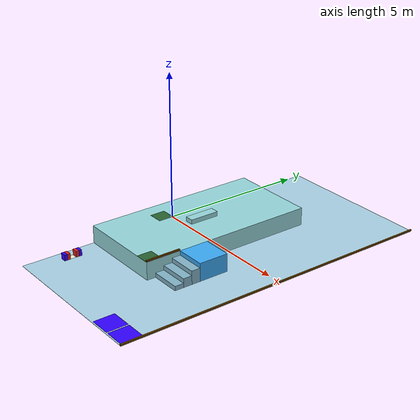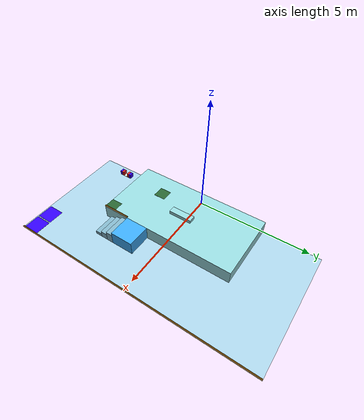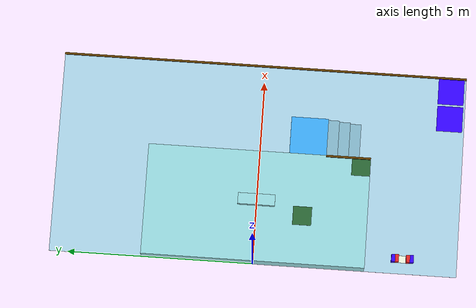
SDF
<sdf version="1.9">
 <world name="robocon_2027">
  <model name="robocon_2027_field">
   <static>true</static>
   <link name="ground_blue">
    <pose>2.750000 0.000000 0.001000 0.000000 0.000000 0.000000</pose>
    <visual name="visual">
     <geometry><box><size>5.500000 11.000000 0.002000</size></box></geometry>
     <cast_shadows>false</cast_shadows>
     <material>
      <ambient>0.666667 0.823529 0.901961 1</ambient>
      <diffuse>0.666667 0.823529 0.901961 1</diffuse>
      <specular>0.08 0.08 0.08 1</specular>
      <double_sided>true</double_sided>
     </material>
    </visual>
   </link>
   <link name="start_blue_outer">
    <pose>5.100000 -5.100000 0.003000 0.000000 0.000000 0.000000</pose>
    <visual name="visual">
     <geometry><box><size>0.700000 0.700000 0.002000</size></box></geometry>
     <cast_shadows>false</cast_shadows>
     <material>
      <ambient>0.196078 0.000000 1.000000 1</ambient>
      <diffuse>0.196078 0.000000 1.000000 1</diffuse>
      <specular>0.08 0.08 0.08 1</specular>
      <double_sided>true</double_sided>
     </material>
    </visual>
   </link>
   <link name="start_blue_inner">
    <pose>4.350000 -5.100000 0.003000 0.000000 0.000000 0.000000</pose>
    <visual name="visual">
     <geometry><box><size>0.700000 0.700000 0.002000</size></box></geometry>
     <cast_shadows>false</cast_shadows>
     <material>
      <ambient>0.196078 0.000000 1.000000 1</ambient>
      <diffuse>0.196078 0.000000 1.000000 1</diffuse>
      <specular>0.08 0.08 0.08 1</specular>
      <double_sided>true</double_sided>
     </material>
    </visual>
   </link>
   <link name="sky_grid_2_4">
    <pose>0.400000 -4.225000 0.006000 0.000000 0.000000 0.000000</pose>
    <visual name="visual">
     <geometry><box><size>0.192000 0.192000 0.002000</size></box></geometry>
     <cast_shadows>false</cast_shadows>
     <material>
      <ambient>0.803922 0.901961 0.745098 1</ambient>
      <diffuse>0.803922 0.901961 0.745098 1</diffuse>
      <specular>0.08 0.08 0.08 1</specular>
      <double_sided>true</double_sided>
     </material>
    </visual>
   </link>
   <link name="sky_grid_3_4">
    <pose>0.400000 -4.025000 0.006000 0.000000 0.000000 0.000000</pose>
    <visual name="visual">
     <geometry><box><size>0.192000 0.192000 0.002000</size></box></geometry>
     <cast_shadows>false</cast_shadows>
     <material>
      <ambient>0.921569 0.960784 0.862745 1</ambient>
      <diffuse>0.921569 0.960784 0.862745 1</diffuse>
      <specular>0.08 0.08 0.08 1</specular>
      <double_sided>true</double_sided>
     </material>
    </visual>
   </link>
   <link name="sky_grid_4_4">
    <pose>0.400000 -3.825000 0.006000 0.000000 0.000000 0.000000</pose>
    <visual name="visual">
     <geometry><box><size>0.192000 0.192000 0.002000</size></box></geometry>
     <cast_shadows>false</cast_shadows>
     <material>
      <ambient>0.803922 0.901961 0.745098 1</ambient>
      <diffuse>0.803922 0.901961 0.745098 1</diffuse>
      <specular>0.08 0.08 0.08 1</specular>
      <double_sided>true</double_sided>
     </material>
    </visual>
   </link>
   <link name="wall_ground_x_pos">
    <pose>5.475000 0.000000 0.025000 0.000000 0.000000 0.000000</pose>
    <collision name="collision">
     <geometry><box><size>0.050000 11.000000 0.050000</size></box></geometry>
    </collision>
    <visual name="visual">
     <geometry><box><size>0.050000 11.000000 0.050000</size></box></geometry>
     <material>
      <ambient>0.392157 0.243137 0.000000 1</ambient>
      <diffuse>0.392157 0.243137 0.000000 1</diffuse>
      <specular>0.08 0.08 0.08 1</specular>
      <double_sided>true</double_sided>
     </material>
    </visual>
   </link>
   <link name="l1_blue">
    <pose>1.500000 0.000000 0.300000 0.000000 0.000000 0.000000</pose>
    <collision name="collision">
     <geometry><box><size>3.000000 6.000000 0.600000</size></box></geometry>
    </collision>
    <visual name="visual">
     <geometry><box><size>3.000000 6.000000 0.600000</size></box></geometry>
     <material>
      <ambient>0.588235 0.843137 0.862745 1</ambient>
      <diffuse>0.588235 0.843137 0.862745 1</diffuse>
      <specular>0.08 0.08 0.08 1</specular>
      <double_sided>true</double_sided>
     </material>
    </visual>
   </link>
   <link name="l1_spot_blue_negative">
    <pose>2.750000 -2.750000 0.603000 0.000000 0.000000 0.000000</pose>
    <visual name="visual">
     <geometry><box><size>0.500000 0.500000 0.002000</size></box></geometry>
     <cast_shadows>false</cast_shadows>
     <material>
      <ambient>0.156863 0.392157 0.196078 1</ambient>
      <diffuse>0.156863 0.392157 0.196078 1</diffuse>
      <specular>0.08 0.08 0.08 1</specular>
      <double_sided>true</double_sided>
     </material>
    </visual>
   </link>
   <link name="wall_l1_blue_before_transfer">
    <pose>2.975000 -2.400000 0.625000 0.000000 0.000000 0.000000</pose>
    <collision name="collision">
     <geometry><box><size>0.050000 1.200000 0.050000</size></box></geometry>
    </collision>
    <visual name="visual">
     <geometry><box><size>0.050000 1.200000 0.050000</size></box></geometry>
     <material>
      <ambient>0.392157 0.243137 0.000000 1</ambient>
      <diffuse>0.392157 0.243137 0.000000 1</diffuse>
      <specular>0.08 0.08 0.08 1</specular>
      <double_sided>true</double_sided>
     </material>
    </visual>
   </link>
   <link name="transfer_blue">
    <pose>3.500000 -1.300000 0.300000 0.000000 0.000000 0.000000</pose>
    <collision name="collision">
     <geometry><box><size>1.000000 1.000000 0.600000</size></box></geometry>
    </collision>
    <visual name="visual">
     <geometry><box><size>1.000000 1.000000 0.600000</size></box></geometry>
     <material>
      <ambient>0.235294 0.666667 0.960784 1</ambient>
      <diffuse>0.235294 0.666667 0.960784 1</diffuse>
      <specular>0.08 0.08 0.08 1</specular>
      <double_sided>true</double_sided>
     </material>
    </visual>
   </link>
   <link name="stair_blue_1">
    <pose>3.500000 -2.550000 0.075000 0.000000 0.000000 0.000000</pose>
    <collision name="collision">
     <geometry><box><size>1.000000 0.300000 0.150000</size></box></geometry>
    </collision>
    <visual name="visual">
     <geometry><box><size>1.000000 0.300000 0.150000</size></box></geometry>
     <material>
      <ambient>0.509804 0.705882 0.784314 1</ambient>
      <diffuse>0.509804 0.705882 0.784314 1</diffuse>
      <specular>0.08 0.08 0.08 1</specular>
      <double_sided>true</double_sided>
     </material>
    </visual>
   </link>
   <link name="stair_blue_2">
    <pose>3.500000 -2.250000 0.150000 0.000000 0.000000 0.000000</pose>
    <collision name="collision">
     <geometry><box><size>1.000000 0.300000 0.300000</size></box></geometry>
    </collision>
    <visual name="visual">
     <geometry><box><size>1.000000 0.300000 0.300000</size></box></geometry>
     <material>
      <ambient>0.509804 0.705882 0.784314 1</ambient>
      <diffuse>0.509804 0.705882 0.784314 1</diffuse>
      <specular>0.08 0.08 0.08 1</specular>
      <double_sided>true</double_sided>
     </material>
    </visual>
   </link>
   <link name="stair_blue_3">
    <pose>3.500000 -1.950000 0.225000 0.000000 0.000000 0.000000</pose>
    <collision name="collision">
     <geometry><box><size>1.000000 0.300000 0.450000</size></box></geometry>
    </collision>
    <visual name="visual">
     <geometry><box><size>1.000000 0.300000 0.450000</size></box></geometry>
     <material>
      <ambient>0.509804 0.705882 0.784314 1</ambient>
      <diffuse>0.509804 0.705882 0.784314 1</diffuse>
      <specular>0.08 0.08 0.08 1</specular>
      <double_sided>true</double_sided>
     </material>
    </visual>
   </link>
   <link name="l2_stair_blue">
    <pose>1.650000 0.000000 0.675000 0.000000 0.000000 0.000000</pose>
    <collision name="collision">
     <geometry><box><size>0.300000 1.000000 0.150000</size></box></geometry>
    </collision>
    <visual name="visual">
     <geometry><box><size>0.300000 1.000000 0.150000</size></box></geometry>
     <material>
      <ambient>0.588235 0.843137 0.862745 1</ambient>
      <diffuse>0.588235 0.843137 0.862745 1</diffuse>
      <specular>0.08 0.08 0.08 1</specular>
      <double_sided>true</double_sided>
     </material>
    </visual>
   </link>
   <link name="l2_spot_blue_negative">
    <pose>1.250000 -1.250000 0.901000 0.000000 0.000000 0.000000</pose>
    <visual name="visual">
     <geometry><box><size>0.500000 0.500000 0.002000</size></box></geometry>
     <cast_shadows>false</cast_shadows>
     <material>
      <ambient>0.156863 0.392157 0.196078 1</ambient>
      <diffuse>0.156863 0.392157 0.196078 1</diffuse>
      <specular>0.08 0.08 0.08 1</specular>
      <double_sided>true</double_sided>
     </material>
    </visual>
   </link>
  </model>
  <model name="sky_block_03">
   <pose>0.400000 -3.825000 0.100000 0.000000 0.000000 -1.570796</pose>
   <link name="sky_block_03_link">
    <inertial>
     <mass>0.115000</mass>
     <inertia>
      <ixx>0.00076667</ixx>
      <iyy>0.00076667</iyy>
      <izz>0.00076667</izz>
      <ixy>0.00000000</ixy>
      <ixz>0.00000000</ixz>
      <iyz>0.00000000</iyz>
     </inertia>
    </inertial>
    <collision name="collision">
     <geometry><box><size>0.200000 0.200000 0.200000</size></box></geometry>
     <surface><friction><ode><mu>0.80</mu><mu2>0.80</mu2></ode></friction></surface>
    </collision>
    <visual name="red_half">
     <pose>0.050000 0.000000 0.000000 0.000000 0.000000 0.000000</pose>
     <geometry><box><size>0.100000 0.200000 0.200000</size></box></geometry>
     <material>
      <ambient>0.874510 0.133333 0.133333 1</ambient>
      <diffuse>0.874510 0.133333 0.133333 1</diffuse>
      <specular>0.08 0.08 0.08 1</specular>
      <double_sided>true</double_sided>
     </material>
    </visual>
    <visual name="blue_half">
     <pose>-0.050000 0.000000 0.000000 0.000000 0.000000 0.000000</pose>
     <geometry><box><size>0.100000 0.200000 0.200000</size></box></geometry>
     <material>
      <ambient>0.196078 0.000000 1.000000 1</ambient>
      <diffuse>0.196078 0.000000 1.000000 1</diffuse>
      <specular>0.08 0.08 0.08 1</specular>
      <double_sided>true</double_sided>
     </material>
    </visual>
   </link>
  </model>
  <model name="sky_block_07">
   <pose>0.400000 -4.225000 0.100000 0.000000 0.000000 1.570796</pose>
   <link name="sky_block_07_link">
    <inertial>
     <mass>0.115000</mass>
     <inertia>
      <ixx>0.00076667</ixx>
      <iyy>0.00076667</iyy>
      <izz>0.00076667</izz>
      <ixy>0.00000000</ixy>
      <ixz>0.00000000</ixz>
      <iyz>0.00000000</iyz>
     </inertia>
    </inertial>
    <collision name="collision">
     <geometry><box><size>0.200000 0.200000 0.200000</size></box></geometry>
     <surface><friction><ode><mu>0.80</mu><mu2>0.80</mu2></ode></friction></surface>
    </collision>
    <visual name="red_half">
     <pose>0.050000 0.000000 0.000000 0.000000 0.000000 0.000000</pose>
     <geometry><box><size>0.100000 0.200000 0.200000</size></box></geometry>
     <material>
      <ambient>0.874510 0.133333 0.133333 1</ambient>
      <diffuse>0.874510 0.133333 0.133333 1</diffuse>
      <specular>0.08 0.08 0.08 1</specular>
      <double_sided>true</double_sided>
     </material>
    </visual>
    <visual name="blue_half">
     <pose>-0.050000 0.000000 0.000000 0.000000 0.000000 0.000000</pose>
     <geometry><box><size>0.100000 0.200000 0.200000</size></box></geometry>
     <material>
      <ambient>0.196078 0.000000 1.000000 1</ambient>
      <diffuse>0.196078 0.000000 1.000000 1</diffuse>
      <specular>0.08 0.08 0.08 1</specular>
      <double_sided>true</double_sided>
     </material>
    </visual>
   </link>
  </model>
 </world>
</sdf>
